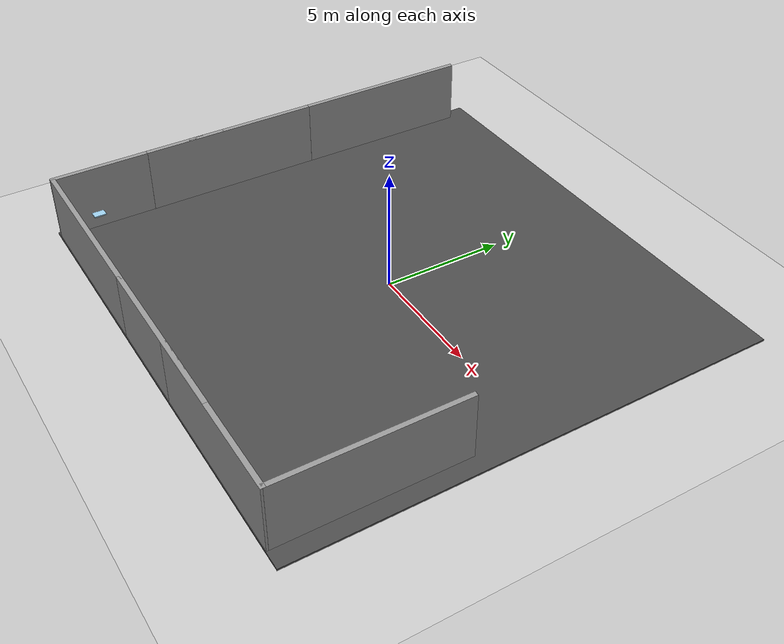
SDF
<sdf version="1.6">
 <world name="default">
  <light name="sun" type="directional">
   <pose>0 0 10 0 -0 0</pose>
   <diffuse>0.8 0.8 0.8 1</diffuse>
   <specular>0.2 0.2 0.2 1</specular>
   <attenuation>
    <range>1000</range>
    <constant>0.9</constant>
    <linear>0.01</linear>
    <quadratic>0.001</quadratic>
   </attenuation>
   <direction>-0.5 0.1 -0.9</direction>
  </light>
  <model name="ground_plane">
   <static>1</static>
   <link name="link">
    <collision name="collision">
     <geometry><plane><normal>0 0 1</normal><size>100 100</size></plane></geometry>
     <surface>
      <contact><collide_bitmask>65535</collide_bitmask></contact>
      <friction><ode><mu>100</mu><mu2>50</mu2></ode></friction>
     </surface>
    </collision>
    <visual name="visual">
     <cast_shadows>0</cast_shadows>
     <geometry><plane><normal>0 0 1</normal><size>100 100</size></plane></geometry>
     <material>
      <script><uri>file://media/materials/scripts/gazebo.material</uri><name>Gazebo/Grey</name></script>
     </material>
    </visual>
   </link>
  </model>
  <gravity>0 0 -9.8</gravity>
  <magnetic_field>6e-06 2.3e-05 -4.2e-05</magnetic_field>
  <atmosphere type="adiabatic"/>
  <physics name="default_physics" default="0" type="ode">
   <max_step_size>0.001</max_step_size>
   <real_time_factor>1</real_time_factor>
   <real_time_update_rate>1000</real_time_update_rate>
  </physics>
  <scene><ambient>0.4 0.4 0.4 1</ambient><background>0.7 0.7 0.7 1</background><shadows>1</shadows></scene>
  <audio><device>default</device></audio>
  <spherical_coordinates>
   <surface_model>EARTH_WGS84</surface_model>
   <latitude_deg>0</latitude_deg>
   <longitude_deg>0</longitude_deg>
   <elevation>0</elevation>
   <heading_deg>0</heading_deg>
  </spherical_coordinates>
  <model name="asphalt_plane">
   <static>1</static>
   <link name="link">
    <collision name="collision"><geometry><box><size>20 20 0.1</size></box></geometry></collision>
    <visual name="visual">
     <cast_shadows>0</cast_shadows>
     <geometry><box><size>20 20 0.1</size></box></geometry>
     <material>
      <script>
       <uri>model://asphalt_plane/materials/scripts</uri>
       <uri>model://asphalt_plane/materials/textures</uri>
       <name>vrc/asphalt</name>
      </script>
     </material>
    </visual>
   </link>
   <pose>-0.001444 0.044822 0 0 -0 0</pose>
  </model>
  <model name="grey_wall">
   <static>1</static>
   <link name="link">
    <pose>0 0 1.4 0 -0 0</pose>
    <collision name="collision"><geometry><box><size>7.5 0.2 2.8</size></box></geometry></collision>
    <visual name="visual">
     <cast_shadows>0</cast_shadows>
     <geometry><box><size>7.5 0.2 2.8</size></box></geometry>
     <material>
      <script>
       <uri>model://grey_wall/materials/scripts</uri>
       <uri>model://grey_wall/materials/textures</uri>
       <name>vrc/grey_wall</name>
      </script>
     </material>
    </visual>
   </link>
   <pose>-5.91083 -9.82875 0 0 -0 0</pose>
  </model>
  <model name="grey_wall_0">
   <static>1</static>
   <link name="link">
    <pose>0 0 1.4 0 -0 0</pose>
    <collision name="collision"><geometry><box><size>7.5 0.2 2.8</size></box></geometry></collision>
    <visual name="visual">
     <cast_shadows>0</cast_shadows>
     <geometry><box><size>7.5 0.2 2.8</size></box></geometry>
     <material>
      <script>
       <uri>model://grey_wall/materials/scripts</uri>
       <uri>model://grey_wall/materials/textures</uri>
       <name>vrc/grey_wall</name>
      </script>
     </material>
    </visual>
   </link>
   <pose>-9.59873 5.40155 0 0 0 -1.57578</pose>
  </model>
  <model name="grey_wall_0_clone">
   <static>1</static>
   <link name="link">
    <pose>0 0 1.4 0 -0 0</pose>
    <collision name="collision"><geometry><box><size>7.5 0.2 2.8</size></box></geometry></collision>
    <visual name="visual">
     <cast_shadows>0</cast_shadows>
     <geometry><box><size>7.5 0.2 2.8</size></box></geometry>
     <material>
      <script>
       <uri>model://grey_wall/materials/scripts</uri>
       <uri>model://grey_wall/materials/textures</uri>
       <name>vrc/grey_wall</name>
      </script>
     </material>
    </visual>
   </link>
   <pose>-9.63983 -2.09786 0 0 0 -1.57578</pose>
  </model>
  <model name="grey_wall_0_clone_clone">
   <static>1</static>
   <link name="link">
    <pose>0 0 1.4 0 -0 0</pose>
    <collision name="collision"><geometry><box><size>7.5 0.2 2.8</size></box></geometry></collision>
    <visual name="visual">
     <cast_shadows>0</cast_shadows>
     <geometry><box><size>7.5 0.2 2.8</size></box></geometry>
     <material>
      <script>
       <uri>model://grey_wall/materials/scripts</uri>
       <uri>model://grey_wall/materials/textures</uri>
       <name>vrc/grey_wall</name>
      </script>
     </material>
    </visual>
   </link>
   <pose>-9.66222 -6.17293 0 0 0 -1.57578</pose>
  </model>
  <model name="grey_wall_clone">
   <static>1</static>
   <link name="link">
    <pose>0 0 1.4 0 -0 0</pose>
    <collision name="collision"><geometry><box><size>7.5 0.2 2.8</size></box></geometry></collision>
    <visual name="visual">
     <cast_shadows>0</cast_shadows>
     <geometry><box><size>7.5 0.2 2.8</size></box></geometry>
     <material>
      <script>
       <uri>model://grey_wall/materials/scripts</uri>
       <uri>model://grey_wall/materials/textures</uri>
       <name>vrc/grey_wall</name>
      </script>
     </material>
    </visual>
   </link>
   <pose>1.41187 -9.83013 0 0 -0 0</pose>
  </model>
  <model name="grey_wall_clone_clone">
   <static>1</static>
   <link name="link">
    <pose>0 0 1.4 0 -0 0</pose>
    <collision name="collision"><geometry><box><size>7.5 0.2 2.8</size></box></geometry></collision>
    <visual name="visual">
     <cast_shadows>0</cast_shadows>
     <geometry><box><size>7.5 0.2 2.8</size></box></geometry>
     <material>
      <script>
       <uri>model://grey_wall/materials/scripts</uri>
       <uri>model://grey_wall/materials/textures</uri>
       <name>vrc/grey_wall</name>
      </script>
     </material>
    </visual>
   </link>
   <pose>5.49321 -9.83637 0 0 -0 0</pose>
  </model>
  <model name="grey_wall_0_clone_clone_0">
   <static>1</static>
   <link name="link">
    <pose>0 0 1.4 0 -0 0</pose>
    <collision name="collision"><geometry><box><size>7.5 0.2 2.8</size></box></geometry></collision>
    <visual name="visual">
     <cast_shadows>0</cast_shadows>
     <geometry><box><size>7.5 0.2 2.8</size></box></geometry>
     <material>
      <script>
       <uri>model://grey_wall/materials/scripts</uri>
       <uri>model://grey_wall/materials/textures</uri>
       <name>vrc/grey_wall</name>
      </script>
     </material>
    </visual>
   </link>
   <pose>9.16589 -6.09813 0 0 0 -1.57578</pose>
  </model>
  <model name="aruco">
   <static>1</static>
   <link name="link">
    <visual name="visual">
     <geometry><mesh><uri>model://aruco/meshes/aruco.dae</uri><scale>1 1 1</scale></mesh></geometry>
    </visual>
   </link>
   <pose>-9.46295 -8.30057 0.719245 0 -0 0</pose>
  </model>
 </world>
</sdf>
